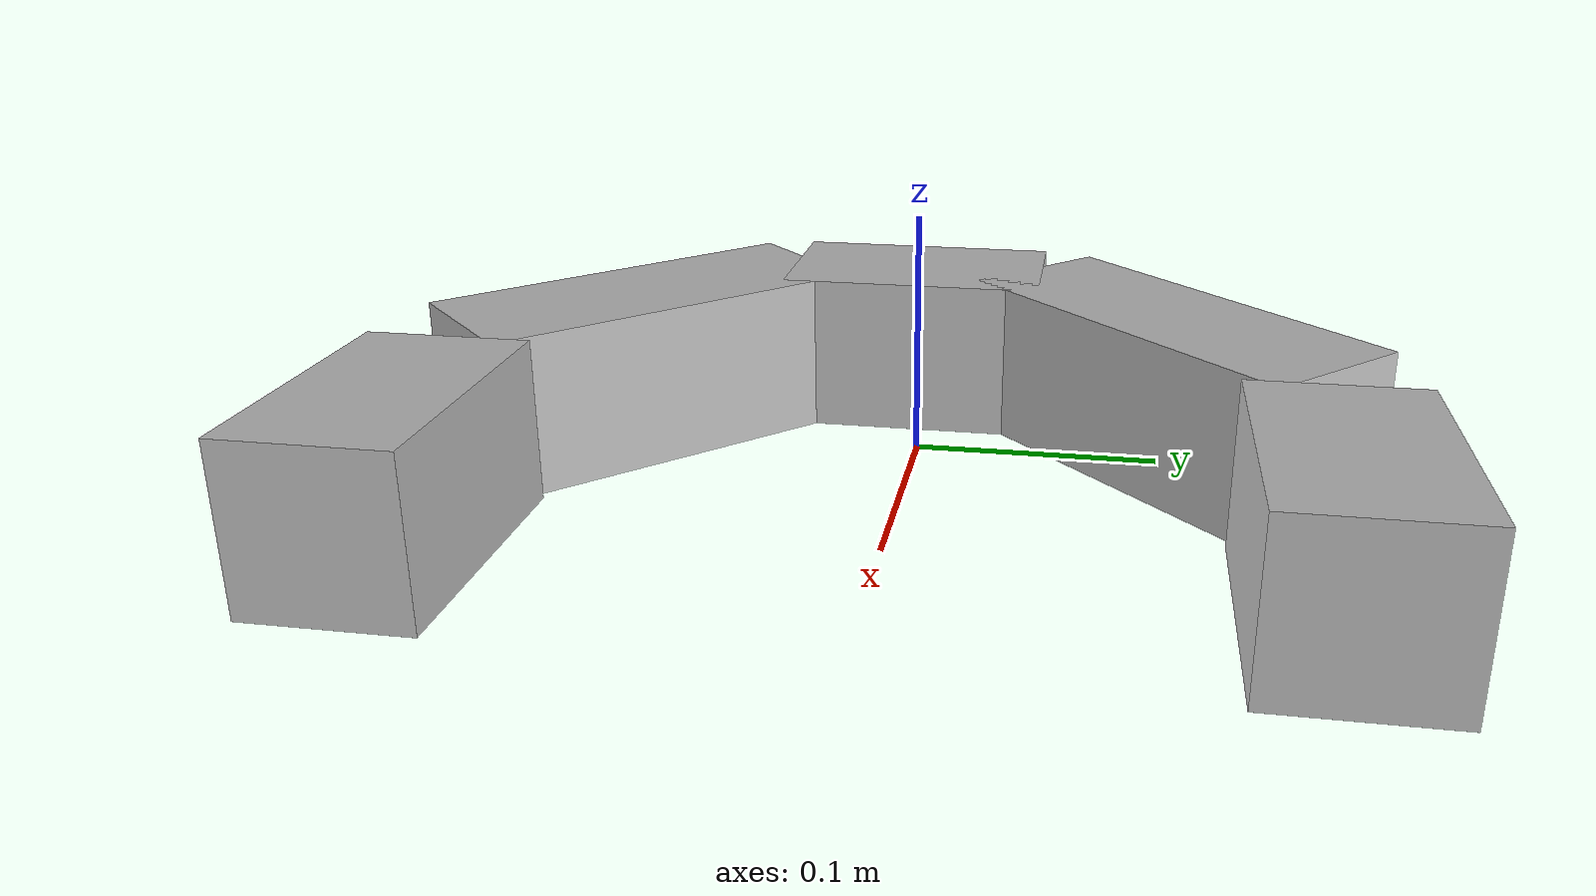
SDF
<?xml version="1.0" ?>
<sdf version="1.4">
  <model name="SDIC_Gripper">
    <link name="palm">
      <pose>0.0 0.0 0.05 0 0 0</pose>
      <inertial>
        <mass>0.002</mass>
      </inertial>
      <collision name="collision">
        <geometry>
          <box>
            <size>0.06 0.1 0.06</size>
          </box>
        </geometry>
        <surface>
	  <friction>
            <ode>
              <mu>0.1</mu>
              <mu2>0</mu2>
            </ode>
          </friction>
          <contact>
            <ode>
              <max_vel>0.0</max_vel>
            </ode>
          </contact>
        </surface>
      </collision>
      <visual name="visual">
        <geometry>
          <box>
            <size>0.06 0.1 0.06</size>
          </box>
        </geometry>
      </visual>
    </link>
    <link name="left_finger">
      <pose>0.05 0.1 0.05 0 0 -0.78539</pose>
      <inertial>
        <mass>0.001</mass>
	<inertia>
	  <ixx>0.001</ixx>
	  <ixy>0</ixy>
	  <ixz>0</ixz>
	  <iyy>0.001</iyy>
	  <iyz>0</iyz>
	  <izz>0.001</izz>
	</inertia>
      </inertial>
      <collision name="collision">
        <geometry>
          <box>
            <size>0.06 0.15 0.06</size>
          </box>
        </geometry>
        <surface>
          <friction>
            <ode>
              <mu>0.1</mu>
              <mu2>0</mu2>
            </ode>
          </friction>
          <contact>
            <ode>
              <max_vel>0.0</max_vel>
            </ode>
          </contact>
        </surface>
      </collision>
      <visual name="visual">
        <geometry>
          <box>
            <size>0.06 0.15 0.06</size>
          </box>
        </geometry>
      </visual>
    </link>
    <link name="left_finger_tip">
      <pose>0.168 0.15 0.05 0 0 1.5707</pose>
      <inertial>
        <mass>0.001</mass>
	<inertia>
	  <ixx>0.001</ixx>
	  <ixy>0</ixy>
	  <ixz>0</ixz>
	  <iyy>0.001</iyy>
	  <iyz>0</iyz>
	  <izz>0.001</izz>
	</inertia>
      </inertial>
      <collision name="collision">
        <geometry>
          <box>
            <size>0.06 0.1 0.06</size>
          </box>
        </geometry>
        <surface>
          <friction>
            <ode>
              <mu>0.1</mu>
              <mu2>0</mu2>
            </ode>
          </friction>
          <contact>
            <ode>
              <max_vel>0.0</max_vel>
            </ode>
          </contact>
        </surface>
      </collision>
      <visual name="visual">
        <geometry>
          <box>
            <size>0.06 0.1 0.06</size>
          </box>
        </geometry>
      </visual>
    </link>
    <link name="right_finger">
      <pose>0.05 -0.1 0.05 0 0 .78539</pose>
      <inertial>
        <mass>0.001</mass>
	<inertia>
	  <ixx>0.001</ixx>
	  <ixy>0</ixy>
	  <ixz>0</ixz>
	  <iyy>0.001</iyy>
	  <iyz>0</iyz>
	  <izz>0.001</izz>
	</inertia>
      </inertial>
      <collision name="collision">
        <geometry>
          <box>
            <size>0.06 0.15 0.06</size>
          </box>
        </geometry>
        <surface>
          <friction>
            <ode>
              <mu>0.1</mu>
              <mu2>0</mu2>
            </ode>
          </friction>
          <contact>
            <ode>
              <max_vel>0.0</max_vel>
            </ode>
          </contact>
        </surface>
      </collision>
      <visual name="visual">
        <geometry>
          <box>
            <size>0.06 0.15 0.06</size>
          </box>
        </geometry>
      </visual>
    </link>
    <link name="right_finger_tip">
      <pose>0.168 -0.15 0.05 0 0 1.5707</pose>
      <inertial>
        <mass>0.001</mass>
	<inertia>
	  <ixx>0.001</ixx>
	  <ixy>0</ixy>
	  <ixz>0</ixz>
	  <iyy>0.001</iyy>
	  <iyz>0</iyz>
	  <izz>0.001</izz>
	</inertia>
      </inertial>
      <collision name="collision">
        <geometry>
          <box>
            <size>0.06 0.1 0.06</size>
          </box>
        </geometry>
        <surface>
          <friction>
            <ode>
              <mu>0.1</mu>
              <mu2>0</mu2>
            </ode>
          </friction>
          <contact>
            <ode>
              <max_vel>0.0</max_vel>
            </ode>
          </contact>
        </surface>
      </collision>
      <visual name="visual">
        <geometry>
          <box>
            <size>0.06 0.1 0.06</size>
          </box>
        </geometry>
      </visual>
    </link>

    <joint name="left_finger" type="revolute">
      <pose>0 -0.075 0 0 0 0</pose>
      <child>left_finger</child>
      <parent>palm</parent>
      <axis>
        <limit><lower>-0.2</lower><upper>0.4</upper></limit>
        <xyz>0 0 -1</xyz>
      </axis>
    </joint>
    <joint name="left_finger_tip" type="revolute">
      <pose>0 0.05 0 0 0 0</pose>
      <child>left_finger_tip</child>
      <parent>left_finger</parent>
      <axis>
        <limit><lower>0</lower><upper>0.4</upper></limit>
        <xyz>0 0 -1</xyz>
      </axis>
    </joint>
    <joint name="right_finger" type="revolute">
      <pose>0 0.075 0 0 0 0</pose>
      <child>right_finger</child>
      <parent>palm</parent>
      <axis>
        <limit><lower>-0.2</lower><upper>0.4</upper></limit>
        <xyz>0 0 1</xyz>
      </axis>
    </joint>
    <joint name="right_finger_tip" type="revolute">
      <pose>0 0.05 0 0 0 0</pose>
      <child>right_finger_tip</child>
      <parent>right_finger</parent>
      <axis>
        <limit><lower>0</lower><upper>0.4</upper></limit>
        <xyz>0 0 1</xyz>
      </axis>
    </joint>

  </model>
</sdf>
